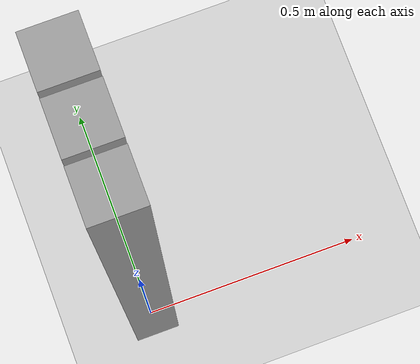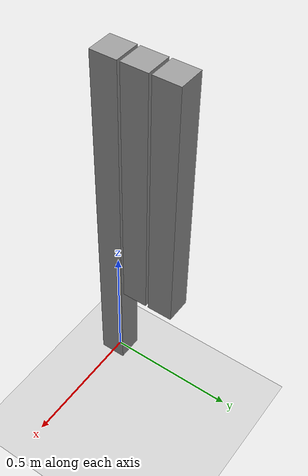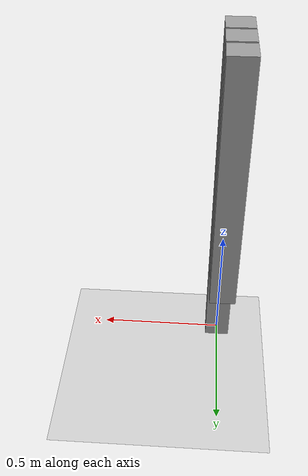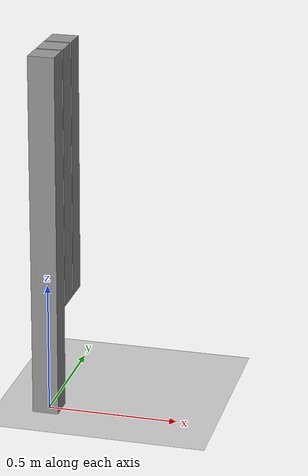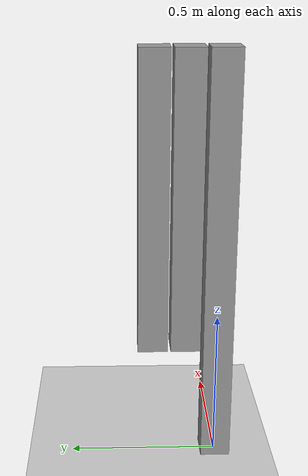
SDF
<sdf version="1.5">
 <world name="default">
  <light name="sun" type="directional">
   <pose>0 0 10 0 -0 0</pose>
   <diffuse>0.8 0.8 0.8 1</diffuse>
   <specular>0.2 0.2 0.2 1</specular>
   <attenuation>
    <range>1000</range>
    <constant>0.9</constant>
    <linear>0.01</linear>
    <quadratic>0.001</quadratic>
   </attenuation>
   <direction>-0.5 0.1 -0.9</direction>
  </light>
  <model name="ground_plane">
   <static>1</static>
   <link name="link">
    <collision name="collision">
     <geometry><plane><normal>0 0 1</normal><size>100 100</size></plane></geometry>
     <surface><friction><ode><mu>100</mu><mu2>50</mu2></ode></friction></surface>
    </collision>
    <visual name="visual">
     <cast_shadows>0</cast_shadows>
     <geometry><plane><normal>0 0 1</normal><size>100 100</size></plane></geometry>
     <material>
      <script><uri>file://media/materials/scripts/gazebo.material</uri><name>Gazebo/Grey</name></script>
     </material>
    </visual>
   </link>
  </model>
  <physics name="default_physics" default="0" type="ode">
   <max_step_size>0.001</max_step_size>
   <real_time_factor>1</real_time_factor>
   <real_time_update_rate>1000</real_time_update_rate>
   <gravity>0 0 -9.8</gravity>
   <magnetic_field>6e-06 2.3e-05 -4.2e-05</magnetic_field>
   <roki>
    <contact_info>
     <compensation>500</compensation>
     <relaxation>1</relaxation>
     <static_friction>1</static_friction>
     <friction>1</friction>
    </contact_info>
    <solver_type>Volume</solver_type>
    <debug_print>false</debug_print>
   </roki>
  </physics>
  <scene><ambient>0.4 0.4 0.4 1</ambient><background>0.7 0.7 0.7 1</background><shadows>1</shadows></scene>
  <audio><device>default</device></audio>
  <spherical_coordinates>
   <surface_model>EARTH_WGS84</surface_model>
   <latitude_deg>0</latitude_deg>
   <longitude_deg>0</longitude_deg>
   <elevation>0</elevation>
   <heading_deg>0</heading_deg>
  </spherical_coordinates>
  <model name="pd_test_arm_02">
   <link name="base">
    <pose>0 -0.055 -0.1 0 -0 0</pose>
    <inertial>
     <mass>1</mass>
     <inertia><ixx>1</ixx><ixy>0</ixy><ixz>0</ixz><iyy>1</iyy><iyz>0</iyz><izz>1</izz></inertia>
    </inertial>
    <visual name="visual">
     <geometry><box><size>0.1 0.1 1.4</size></box></geometry>
     <material>
      <lighting>1</lighting>
      <script><uri>file://media/materials/scripts/gazebo.material</uri><name>Gazebo/Grey</name></script>
      <shader type="pixel"><normal_map>__default__</normal_map></shader>
      <ambient>0.3 0.3 0.3 1</ambient>
      <diffuse>0.7 0.7 0.7 1</diffuse>
      <specular>0.01 0.01 0.01 1</specular>
      <emissive>0 0 0 1</emissive>
     </material>
    </visual>
    <collision name="collision">
     <geometry><box><size>0.1 0.1 1.4</size></box></geometry>
     <surface>
      <friction><ode><mu>1</mu><mu2>1</mu2><fdir1>0 0 0</fdir1><slip1>0</slip1><slip2>0</slip2></ode></friction>
      <bounce><restitution_coefficient>0</restitution_coefficient><threshold>1e+06</threshold></bounce>
      <contact>
       <collide_without_contact>0</collide_without_contact>
       <collide_without_contact_bitmask>1</collide_without_contact_bitmask>
       <collide_bitmask>1</collide_bitmask>
       <ode>
        <soft_cfm>0</soft_cfm>
        <soft_erp>0.2</soft_erp>
        <kp>1e+13</kp>
        <kd>1</kd>
        <max_vel>0.01</max_vel>
        <min_depth>0</min_depth>
       </ode>
       <bullet>
        <split_impulse>1</split_impulse>
        <split_impulse_penetration_threshold>-0.01</split_impulse_penetration_threshold>
        <soft_cfm>0</soft_cfm>
        <soft_erp>0.2</soft_erp>
        <kp>1e+13</kp>
        <kd>1</kd>
       </bullet>
      </contact>
     </surface>
    </collision>
   </link>
   <link name="link_0">
    <pose>0 0.165 0.1 0 -0 0</pose>
    <inertial>
     <mass>1</mass>
     <inertia><ixx>1</ixx><ixy>0</ixy><ixz>0</ixz><iyy>1</iyy><iyz>0</iyz><izz>1</izz></inertia>
    </inertial>
    <visual name="visual">
     <geometry><box><size>0.1 0.1 1</size></box></geometry>
     <material>
      <lighting>1</lighting>
      <script><uri>file://media/materials/scripts/gazebo.material</uri><name>Gazebo/Grey</name></script>
      <shader type="pixel"><normal_map>__default__</normal_map></shader>
      <ambient>0.3 0.3 0.3 1</ambient>
      <diffuse>0.7 0.7 0.7 1</diffuse>
      <specular>0.01 0.01 0.01 1</specular>
      <emissive>0 0 0 1</emissive>
     </material>
    </visual>
    <collision name="collision">
     <geometry><box><size>0.1 0.1 1</size></box></geometry>
     <surface>
      <friction><ode><mu>1</mu><mu2>1</mu2><fdir1>0 0 0</fdir1><slip1>0</slip1><slip2>0</slip2></ode></friction>
      <bounce><restitution_coefficient>0</restitution_coefficient><threshold>1e+06</threshold></bounce>
      <contact>
       <collide_without_contact>0</collide_without_contact>
       <collide_without_contact_bitmask>1</collide_without_contact_bitmask>
       <collide_bitmask>1</collide_bitmask>
       <ode>
        <soft_cfm>0</soft_cfm>
        <soft_erp>0.2</soft_erp>
        <kp>1e+13</kp>
        <kd>1</kd>
        <max_vel>0.01</max_vel>
        <min_depth>0</min_depth>
       </ode>
       <bullet>
        <split_impulse>1</split_impulse>
        <split_impulse_penetration_threshold>-0.01</split_impulse_penetration_threshold>
        <soft_cfm>0</soft_cfm>
        <soft_erp>0.2</soft_erp>
        <kp>1e+13</kp>
        <kd>1</kd>
       </bullet>
      </contact>
     </surface>
    </collision>
   </link>
   <link name="link_1">
    <pose>0 0.055 0.1 0 -0 0</pose>
    <inertial>
     <mass>1</mass>
     <inertia><ixx>1</ixx><ixy>0</ixy><ixz>0</ixz><iyy>1</iyy><iyz>0</iyz><izz>1</izz></inertia>
    </inertial>
    <visual name="visual">
     <geometry><box><size>0.1 0.1 1</size></box></geometry>
     <material>
      <lighting>1</lighting>
      <script><uri>file://media/materials/scripts/gazebo.material</uri><name>Gazebo/Grey</name></script>
      <shader type="pixel"><normal_map>__default__</normal_map></shader>
      <ambient>0.3 0.3 0.3 1</ambient>
      <diffuse>0.7 0.7 0.7 1</diffuse>
      <specular>0.01 0.01 0.01 1</specular>
      <emissive>0 0 0 1</emissive>
     </material>
    </visual>
    <collision name="collision">
     <geometry><box><size>0.1 0.1 1</size></box></geometry>
     <surface>
      <friction><ode><mu>1</mu><mu2>1</mu2><fdir1>0 0 0</fdir1><slip1>0</slip1><slip2>0</slip2></ode></friction>
      <bounce><restitution_coefficient>0</restitution_coefficient><threshold>1e+06</threshold></bounce>
      <contact>
       <collide_without_contact>0</collide_without_contact>
       <collide_without_contact_bitmask>1</collide_without_contact_bitmask>
       <collide_bitmask>1</collide_bitmask>
       <ode>
        <soft_cfm>0</soft_cfm>
        <soft_erp>0.2</soft_erp>
        <kp>1e+13</kp>
        <kd>1</kd>
        <max_vel>0.01</max_vel>
        <min_depth>0</min_depth>
       </ode>
       <bullet>
        <split_impulse>1</split_impulse>
        <split_impulse_penetration_threshold>-0.01</split_impulse_penetration_threshold>
        <soft_cfm>0</soft_cfm>
        <soft_erp>0.2</soft_erp>
        <kp>1e+13</kp>
        <kd>1</kd>
       </bullet>
      </contact>
     </surface>
    </collision>
   </link>
   <joint name="fixed_to_world" type="fixed"><parent>world</parent><child>base</child></joint>
   <joint name="revol1" type="revolute">
    <parent>link_1</parent>
    <child>link_0</child>
    <pose>0 0 -0.45 0 -0 0</pose>
    <axis>
     <xyz>0 1 0</xyz>
     <use_parent_model_frame>0</use_parent_model_frame>
     <limit>
      <lower>-1.79769e+308</lower>
      <upper>1.79769e+308</upper>
      <effort>-1</effort>
      <velocity>-1</velocity>
     </limit>
     <dynamics>
      <spring_reference>0</spring_reference>
      <spring_stiffness>0</spring_stiffness>
      <damping>0</damping>
      <friction>0</friction>
     </dynamics>
    </axis>
    <physics>
     <ode>
      <cfm>0</cfm>
      <bounce>0</bounce>
      <velocity>0</velocity>
      <fudge_factor>0</fudge_factor>
      <limit><cfm>0</cfm><erp>0.2</erp></limit>
      <suspension><cfm>0</cfm><erp>0.2</erp></suspension>
     </ode>
    </physics>
   </joint>
   <joint name="revol0" type="revolute">
    <parent>base</parent>
    <child>link_1</child>
    <pose>0 0 0.45 0 -0 0</pose>
    <axis>
     <xyz>0 1 0</xyz>
     <use_parent_model_frame>0</use_parent_model_frame>
     <limit>
      <lower>-1.79769e+308</lower>
      <upper>1.79769e+308</upper>
      <effort>-1</effort>
      <velocity>-1</velocity>
     </limit>
     <dynamics>
      <spring_reference>0</spring_reference>
      <spring_stiffness>0</spring_stiffness>
      <damping>0</damping>
      <friction>0</friction>
     </dynamics>
    </axis>
    <physics>
     <ode>
      <cfm>0</cfm>
      <bounce>0</bounce>
      <velocity>0</velocity>
      <fudge_factor>0</fudge_factor>
      <limit><cfm>0</cfm><erp>0.2</erp></limit>
      <suspension><cfm>0</cfm><erp>0.2</erp></suspension>
     </ode>
    </physics>
   </joint>
   <static>0</static>
   <plugin name="osc_pid_controller" filename="libosc_pid_controller_plugin.so">
    <osc_port>7000</osc_port>
    <joint name="revol0" p="10" i="3" d="3" initial_value="0.0"/>
    <joint name="revol1" p="10" i="3" d="3" initial_value="0.0"/>
    <capture_file>/home/test/capture.csv</capture_file>
   </plugin>
   <pose>0 0.055 0.8 0 -0 0</pose>
  </model>
 </world>
</sdf>
